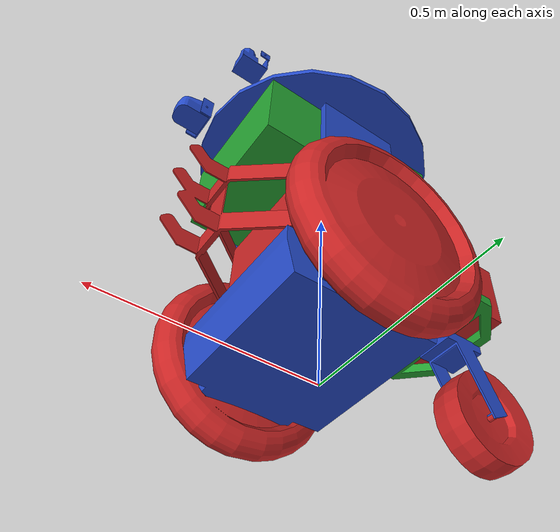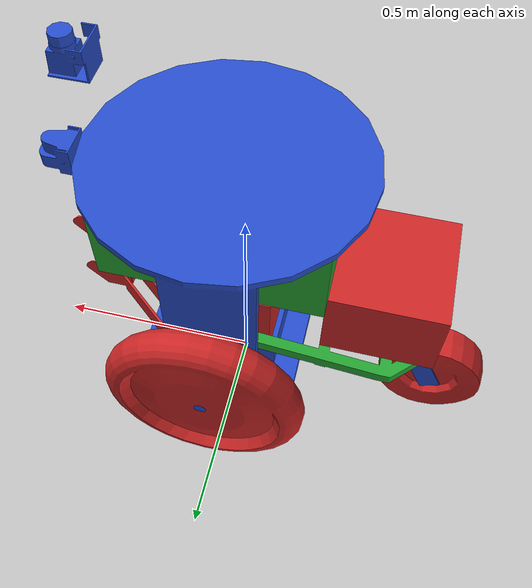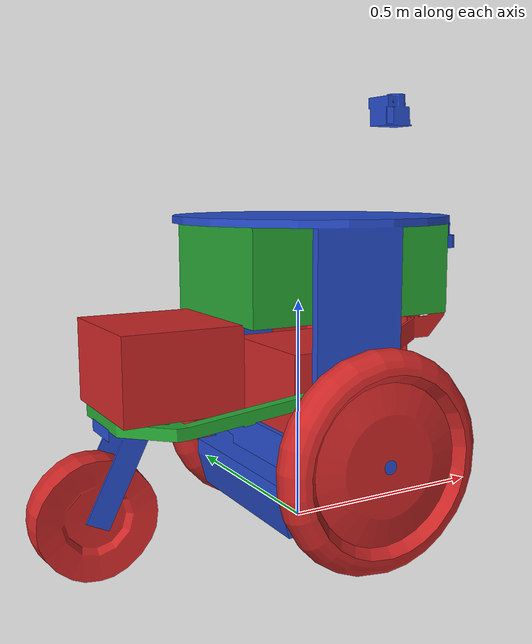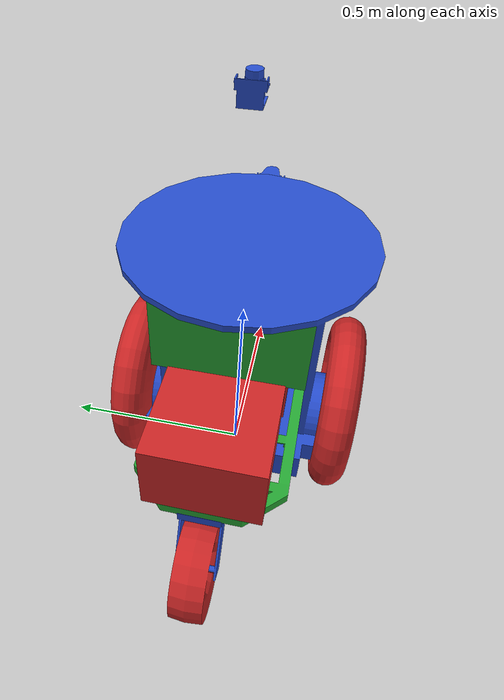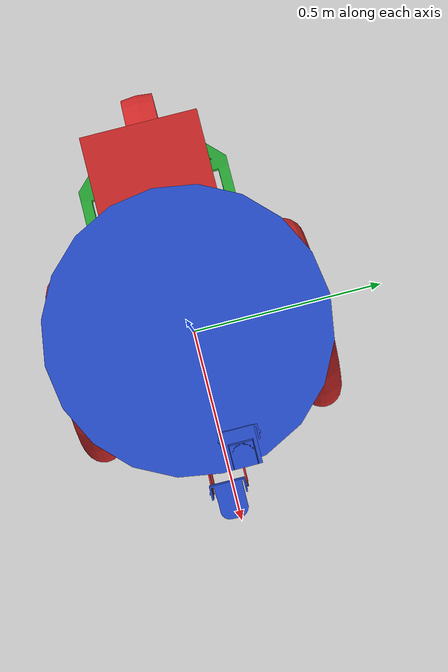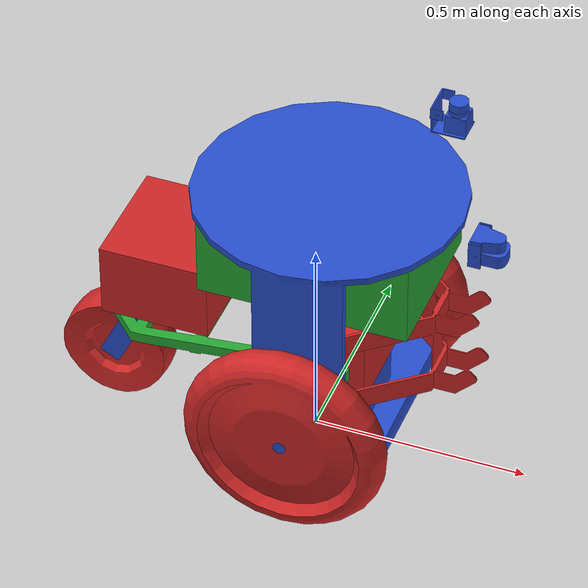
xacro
<?xml version="1.0"?>
<robot name="base"
       xmlns:sensor="http://playerstage.sourceforge.net/gazebo/xmlschema/#sensor"
       xmlns:controller="http://playerstage.sourceforge.net/gazebo/xmlschema/#controller"
       xmlns:xacro="http://ros.org/wiki/fixme"
       xmlns:interface="http://playerstage.sourceforge.net/gazebo/xmlschema/#interface">>

<!-- JOINT LIMIT VALUES FOR EFFORT AND VELOCITY NEED TO BE ADDED FOR REVOLUTE AND CONTINUOUS JOINTS -->

  <!-- base_footprint is a fictitious link(frame) that is on the ground right below base_link origin,
       navigation stack dedpends on this frame -->
  <link name="base_footprint">
    <inertial>
      <mass value="0.000001" />
      <origin xyz="0 0 0" />
      <inertia ixx="0.01" ixy="0.0" ixz="0.0"
               iyy="0.01" iyz="0.0" izz="0.01" />
    </inertial>
    <visual>
      <origin xyz="0 0 0" rpy="0 0 0" />
      <geometry>
        <box size="0.0 0.0 0.0" />
      </geometry>

      <material name="Green" />
    </visual>
    <collision>
      <!-- represent base collision with a simple rectangular model, positioned by base_size_z s.t. top
           surface of the collision box matches the top surface of the PR2 base -->
      <origin xyz="0 0 0" rpy="0 0 0" />
      <geometry>
        <box size="0.00 0.00 0.00" />
      </geometry>
    </collision>
  </link>

  <!-- Base -->

  <!-- Links -->
  <link name="base_link">
    <inertial>
      <origin xyz="0 -0.3 0" rpy="0 0 0" />
      <mass value="90.72"/>
      <inertia ixx="1.2285"  ixy="0"  ixz="0" iyy="1.961064" iyz="0" izz="1.337364" />
    </inertial>

    <visual>
      <origin xyz="0 0 0" rpy="0 0 0" />
      <geometry name="segway_base_geom">
        <mesh filename="package://segbot_description/meshes/segway_base.stl" />
      </geometry>
      <material name="Blue" />
    </visual>

    <collision>
      <origin xyz="0 0 0" rpy="0 0 0" />
      <geometry name="segway_base_collision_geom">
      <mesh filename="package://segbot_description/meshes/convex/segway_base_convex.stlb" />
      </geometry>
    </collision>

  </link>

  <link name="segway_left_wheel">
    <inertial>
      <origin xyz="0 0 0" rpy="0 0 0" />
      <mass value="3.87"/>
      <inertia ixx="0.0852"  ixy="0"  ixz="0" iyy="0.0852" iyz="0" izz="0.1654" />
    </inertial>

    <visual>
      <origin xyz="0 0 0" rpy="0 0 0" />
      <geometry name="segway_left_wheel_geom">
        <mesh filename="package://segbot_description/meshes/segway_wheel.stl" />
      </geometry>
      <material name="Red" />
    </visual>

    <collision>
      <origin xyz="0 0 0" rpy="0 0 0" />
      <geometry name="segway_left_wheel_collision_geom">
      	<cylinder radius="0.2365" length="0.093"/>
      </geometry>
    </collision>

  </link>

  <link name="segway_right_wheel">
    <inertial>
      <origin xyz="0 0 0" rpy="0 0 0" />
      <mass value="3.87"/>
      <inertia ixx="0.0852"  ixy="0"  ixz="0" iyy="0.0852" iyz="0" izz="0.1654" />
    </inertial>

    <visual>
      <origin xyz="0 0 0" rpy="0 0 0" />
      <geometry name="segway_right_wheel_geom">
        <mesh filename="package://segbot_description/meshes/segway_wheel.stl"/>
      </geometry>
      <material name="Red" />
    </visual>

    <collision>
      <origin xyz="0 0 0" rpy="0 0 0" />
      <geometry name="segway_right_wheel_collision_geom">
      	<cylinder radius="0.2365" length="0.093"/>
      </geometry>
    </collision>

  </link>

  <link name="segway_trailer">
    <inertial>
      <origin xyz="0.15 0.075 0" rpy="0 0 0" />
      <mass value="34.54"/>
      <inertia ixx="0.288"  ixy="0"  ixz="0" iyy="0.547" iyz="0" izz="0.446" />
    </inertial>

    <visual>
      <origin xyz="0 0 0" rpy="0 0 0" />
      <geometry name="segway_trailer-geom">
          <mesh filename="package://segbot_description/meshes/trailer.stl" />
      </geometry>
      <material name="Green" />
    </visual>

    <collision>
      <origin xyz="0 0 0" rpy="0 0 0" />
      <geometry name="segway_trailer_collision_geom">
        <mesh filename="package://segbot_description/meshes/convex/trailer_convex.stlb" />
      </geometry>
    </collision>

  </link>

  <link name="segway_trailer_wheel_caster">
    <inertial>
      <origin xyz="0 0 0" rpy="0 0 0" />
      <mass value="1.2"/>
      <inertia ixx="0.01"  ixy="0"  ixz="0" iyy="0.01" iyz="0" izz="0.01" />
    </inertial>

    <visual>
      <origin xyz="0 0 0" rpy="0 0 0" />
      <geometry name="segway_trailer_wheel_caster-geom">
          <mesh filename="package://segbot_description/meshes/trailer_wheel_caster.stl" />
      </geometry>
      <material name="Blue" />
    </visual>

    <collision>
      <origin xyz="0 0 0" rpy="0 0 0" />
      <geometry name="segway_trailer_wheel_caster_collision_geom">
        <mesh filename="package://segbot_description/meshes/convex/trailer_wheel_caster_convex.stlb" />
      </geometry>
    </collision>

  </link>

  <link name="segway_trailer_wheel">
    <inertial>
      <origin xyz="0 0 0" rpy="0 0 0" />
      <mass value="2.5"/>
      <inertia ixx="0.042"  ixy="0"  ixz="0" iyy="0.042" iyz="0" izz="0.082" />
    </inertial>

    <visual>
      <origin xyz="0 0 0" rpy="0 0 0" />
      <geometry name="segway_trailer_wheel-geom">
          <mesh filename="package://segbot_description/meshes/trailer_wheel.stl" />
      </geometry>
      <material name="Red" />
    </visual>

    <collision>
      <origin xyz="0 0 0" rpy="0 0 0" />
      <geometry name="segway_trailer_wheel_collision_geom">
        <cylinder radius="0.1285" length="0.097"/>
      </geometry>
    </collision>

  </link>

  <link name="battery_one">
    <inertial>
      <origin xyz="0 0 0" rpy="0 0 0" />
      <mass value="22.68"/>
      <inertia ixx="0.201"  ixy="0"  ixz="0" iyy="0.263" iyz="0" izz="0.182" />
    </inertial>

    <visual>
      <origin xyz="0 0 0" rpy="0 0 0" />
      <geometry name="battery_one_geom">
	<box size = "0.254 0.178 0.273" />
      </geometry>
      <material name="Red" />
    </visual>

    <collision>
      <origin xyz="0 0 0" rpy="0 0 0" />
      <geometry name="battery_one_collision_geom">
	<box size = "0.254 0.178 0.273" />
      </geometry>
    </collision>

  </link>

  <link name="battery_two">
    <inertial>
      <origin xyz="0 0 0" rpy="0 0 0" />
      <mass value="22.68"/>
      <inertia ixx="0.201"  ixy="0"  ixz="0" iyy="0.263" iyz="0" izz="0.182" />
    </inertial>

    <visual>
      <origin xyz="0 0 0" rpy="0 0 0" />
      <geometry name="battery_two_geom">
	<box size = "0.254 0.178 0.273" />
      </geometry>
      <material name="Red" />
    </visual>

    <collision>
      <origin xyz="0 0 0" rpy="0 0 0" />
      <geometry name="battery_two_collision_geom">
	<box size = "0.254 0.178 0.273" />
      </geometry>
    </collision>

  </link>

  <link name="computer">
    <inertial>
      <origin xyz="0 0 0" rpy="0 0 0" />
      <mass value="4.54"/>
      <inertia ixx="0.063"  ixy="0"  ixz="0" iyy="0.136" iyz="0" izz="0.103" />
    </inertial>

    <visual>
      <origin xyz="0 0 0" rpy="0 0 0" />
      <geometry name="computer_geom">
	<box size = "0.484 0.198 0.356" />
      </geometry>
      <material name="Green" />
    </visual>

    <collision>
      <origin xyz="0 0 0" rpy="0 0 0" />
      <geometry name="segway_base_collision_geom">
	<box size = "0.484 0.198 0.356" />
      </geometry>
    </collision>

  </link>

  <link name="segway_laser_bracket">
    <inertial>
      <origin xyz="0 0 0" rpy="0 0 0" />
      <mass value="2.27"/>
      <inertia ixx="0.01"  ixy="0"  ixz="0" iyy="0.01" iyz="0" izz="0.01" />
    </inertial>

    <visual>
      <origin xyz="0 0 0" rpy="0 0 0" />
      <geometry name="segway_laser_bracket-geom">
          <mesh filename="package://segbot_description/meshes/laser_bracket.stl" />
      </geometry>
      <material name="Red" />
    </visual>

    <collision>
      <origin xyz="0 0 0" rpy="0 0 0" />
      <geometry name="segway_laser_bracket_collision_geom">
      <mesh filename="package://segbot_description/meshes/convex/laser_bracket_convex.stlb" />
      </geometry>
    </collision>

  </link>

  <link name="R283_hokuyo_laser1">
    <inertial>
      <origin xyz="-0.025 -0.017 0" rpy="0 0 0" />
      <mass value="0.37"/>
      <inertia ixx="0.0004"  ixy="0"  ixz="0" iyy="0.0004" iyz="0" izz="0.0004" />
    </inertial>

    <visual>
      <origin xyz="0 0 0" rpy="0 0 0" />
      <geometry name="R283_hokuyo_laser1-geom">
          <mesh filename="package://segbot_description/meshes/R283_hokuyo_laser1.stl" />
      </geometry>
      <material name="Blue" />
    </visual>

    <collision>
      <origin xyz="0 0 0" rpy="0 0 0" />
      <geometry name="R283_hokuyo_laser1_collision_geom">
      <mesh filename="package://segbot_description/meshes/convex/R283_hokuyo_laser1_convex.stlb" />
      </geometry>
    </collision>

  </link>

  <link name="R313_hokuyo_laser2">
    <inertial>
      <origin xyz="-0.023 0 0" rpy="3.14159 0 0" />
      <mass value="0.37"/>
      <inertia ixx="0.0004"  ixy="0"  ixz="0" iyy="0.0004" iyz="0" izz="0.0004" />
    </inertial>

    <visual>
      <origin xyz="0 0 0" rpy="3.14159 0 0" />
      <geometry name="R313_hokuyo_laser2-geom">
          <mesh filename="package://segbot_description/meshes/R313_hokuyo_laser2.stl" />
      </geometry>
      <material name="Blue" />
    </visual>

    <collision>
      <origin xyz="0 0 0" rpy="3.14159 0 0" />
      <geometry name="R283_hokuyo_laser1_collision_geom">
      <mesh filename="package://segbot_description/meshes/convex/R313_hokuyo_laser2_convex.stlb" />
      </geometry>
    </collision>

  </link>

  <!-- Joints -->

  <joint name="base_footprint_joint" type="fixed">
    <origin xyz="0 0 0.55" rpy="1.57 0 3.14" />
    <child link="base_link" />
    <parent link="base_footprint"/>
  </joint>

  <joint name="segway_left_wheel_joint" type="continuous" >
    <origin xyz="-0.031 -0.353 0.272" rpy="0 0 0"/>
    <axis xyz="0 0 1"/>
    <limit effort="122" velocity="500"/>
    <parent link="base_link" />
    <child link="segway_left_wheel" />
    <calibration reference_position="0.0"/>
  </joint>

  <joint name="segway_right_wheel_joint" type="continuous" >
    <origin xyz="-0.031 -0.353 -0.272" rpy="0 3.14 0"/>
    <axis xyz="0 0 1"/>
    <limit effort="122" velocity="500"/>
    <parent link="base_link" />
    <child link="segway_right_wheel" />
    <calibration reference_position="0.0"/>
  </joint>

  <joint name="segway_trailer_joint" type="fixed">
    <origin xyz="0.162 -0.233 0.002" rpy="0 0 0" />
    <parent link="base_link" />
    <child link="segway_trailer" />
    <calibration reference_position="0.0"/>
  </joint>

  <joint name="segway_trailer_wheel_caster_joint" type="continuous">
    <origin xyz="0.244 -0.038 0.002" rpy="0 0 0" />
    <axis xyz="0 1 0"/>
    <parent link="segway_trailer" />
    <child link="segway_trailer_wheel_caster" />
    <calibration reference_position="0.0"/>
  </joint>

  <joint name="segway_trailer_wheel_joint" type="continuous">
    <origin xyz="0.076 -0.187 0.002" rpy="0 0 0" />
    <axis xyz="0 0 1"/>
    <parent link="segway_trailer_wheel_caster" />
    <child link="segway_trailer_wheel" />
    <calibration reference_position="0.0"/>
  </joint>

  <joint name="battery_one_joint" type="fixed">
    <origin xyz="-0.037 -0.231 0" rpy="0 0 0" />
    <parent link="base_link" />
    <child link="battery_one" />
    <calibration reference_position="0.0"/>
  </joint>

  <joint name="battery_two_joint" type="fixed">
    <origin xyz="0.171 0.074 0" rpy="0 0 0" />
    <parent link="segway_trailer" />
    <child link="battery_two" />
    <calibration reference_position="0.0"/>
  </joint>

  <joint name="computer_joint" type="fixed">
    <origin xyz="-0.033 0.025 0" rpy="0 0 0" />
    <parent link="base_link" />
    <child link="computer" />
    <calibration reference_position="0.0"/>
  </joint>

  <joint name="segway_laser_bracket_joint" type="fixed">
    <origin xyz="-0.213 -0.2 0.002" rpy="0 0 0" />
    <parent link="base_link" />
    <child link="segway_laser_bracket" />
    <calibration reference_position="0.0"/>
  </joint>

  <joint name="R283_hokuyo_laser1_joint" type="revolute">
    <origin xyz="-0.052 0.598 0.05" rpy="0 0 0" />
    <axis xyz="0 0 1"/>
    <limit lower="-1.047" upper="1.047" effort="50" velocity="50"/>
    <parent link="segway_laser_bracket" />
    <child link="R283_hokuyo_laser1" />
    <calibration reference_position="0.0"/>
  </joint>

  <joint name="R313_hokuyo_laser2_joint" type="revolute">
    <origin xyz="-0.162 0.283 0" rpy="3.14159 0 0" />
    <axis xyz="0 0 1"/>
    <limit lower="-1.047" upper="1.047" effort="50" velocity="50"/>
    <parent link="segway_laser_bracket" />
    <child link="R313_hokuyo_laser2" />
    <calibration reference_position="0.0"/>
  </joint>

  <!-- Gazebo uses this to color -->

  <gazebo reference="base_link">
    <material value="Gazebo/Blue"/>
    <turnGravityOff>false</turnGravityOff>
  </gazebo>

  <gazebo reference="segway_left_wheel">
    <material value="Gazebo/Red"/>
    <turnGravityOff>false</turnGravityOff>
  </gazebo>

  <gazebo reference="segway_right_wheel">
    <material value="Gazebo/Red"/>
    <turnGravityOff>false</turnGravityOff>
  </gazebo>

  <gazebo reference="segway_trailer">
    <material value="Gazebo/Green"/>
    <turnGravityOff>false</turnGravityOff>
  </gazebo>

  <gazebo reference="segway_trailer_wheel_caster">
    <material value="Gazebo/Blue"/>
    <turnGravityOff>false</turnGravityOff>
  </gazebo>

  <gazebo reference="segway_trailer_wheel">
    <material value="Gazebo/Red"/>
    <turnGravityOff>false</turnGravityOff>
  </gazebo>

  <gazebo reference="battery_one">
    <material value="Gazebo/Red"/>
    <turnGravityOff>false</turnGravityOff>
  </gazebo>

  <gazebo reference="battery_two">
    <material value="Gazebo/Red"/>
    <turnGravityOff>false</turnGravityOff>
  </gazebo>

  <gazebo reference="computer">
    <material value="Gazebo/Green"/>
    <turnGravityOff>false</turnGravityOff>
  </gazebo>

  <gazebo reference="segway_laser_bracket">
    <material value="Gazebo/Green"/>
    <turnGravityOff>false</turnGravityOff>
  </gazebo>

  <gazebo reference="R283_hokuyo_laser1">
    <material value="Gazebo/Red"/>
    <turnGravityOff>false</turnGravityOff>
  </gazebo>

  <gazebo reference="R313_hokuyo_laser2">
    <material value="Gazebo/Red"/>
    <turnGravityOff>false</turnGravityOff>
  </gazebo>

  <!-- Transmits the joints -->

  <transmission name="segway_left_wheel_trans" type="SimpleTransmission">
    <actuator name="segway_left_wheel_motor"/>
    <joint name="segway_left_wheel_joint"/>
    <mechanicalReduction>1.0</mechanicalReduction>
  </transmission>

  <transmission name="segway_right_wheel_trans" type="SimpleTransmission">
    <actuator name="segway_right_wheel_motor"/>
    <joint name="segway_right_wheel_joint"/>
    <mechanicalReduction>1.0</mechanicalReduction>
  </transmission>

  <transmission name="segway_trailer_wheel_caster_trans" type="SimpleTransmission">
    <actuator name="segway_trailer_wheel_caster_motor"/>
    <joint name="segway_trailer_wheel_caster_joint"/>
    <mechanicalReduction>1.0</mechanicalReduction>
  </transmission>

  <transmission name="segway_trailer_wheel_trans" type="SimpleTransmission">
    <actuator name="segway_trailer_wheel_motor"/>
    <joint name="segway_trailer_wheel_joint"/>
    <mechanicalReduction>1.0</mechanicalReduction>
  </transmission>

  <transmission name="R283_hokuyo_laser1_trans" type="SimpleTransmission">
    <actuator name="R283_hokuyo_laser1_motor"/>
    <joint name="R283_hokuyo_laser1_joint"/>
    <mechanicalReduction>1.0</mechanicalReduction>
  </transmission>

  <transmission name="R313_hokuyo_laser2_trans" type="SimpleTransmission">
    <actuator name="R313_hokuyo_laser2_motor"/>
    <joint name="R313_hokuyo_laser2_joint"/>
    <mechanicalReduction>1.0</mechanicalReduction>
  </transmission>

  <gazebo>
    <controller:gazebo_ros_p3d name="p3d_base_controller" plugin="libgazebo_ros_p3d.so">
      <alwaysOn>true</alwaysOn>
      <updateRate>100.0</updateRate>
      <bodyName>base_footprint</bodyName>
      <topicName>base_pose_ground_truth</topicName>
      <gaussianNoise>0.01</gaussianNoise>
      <frameName>map</frameName>
      <xyzOffsets>25.7 25.7 0</xyzOffsets> <!-- initialize odometry for fake localization-->
      <rpyOffsets>0 0 0</rpyOffsets>
      <interface:position name="p3d_base_position"/>
    </controller:gazebo_ros_p3d>
    <canonicalBody>base_footprint</canonicalBody>
  </gazebo>

</robot>
